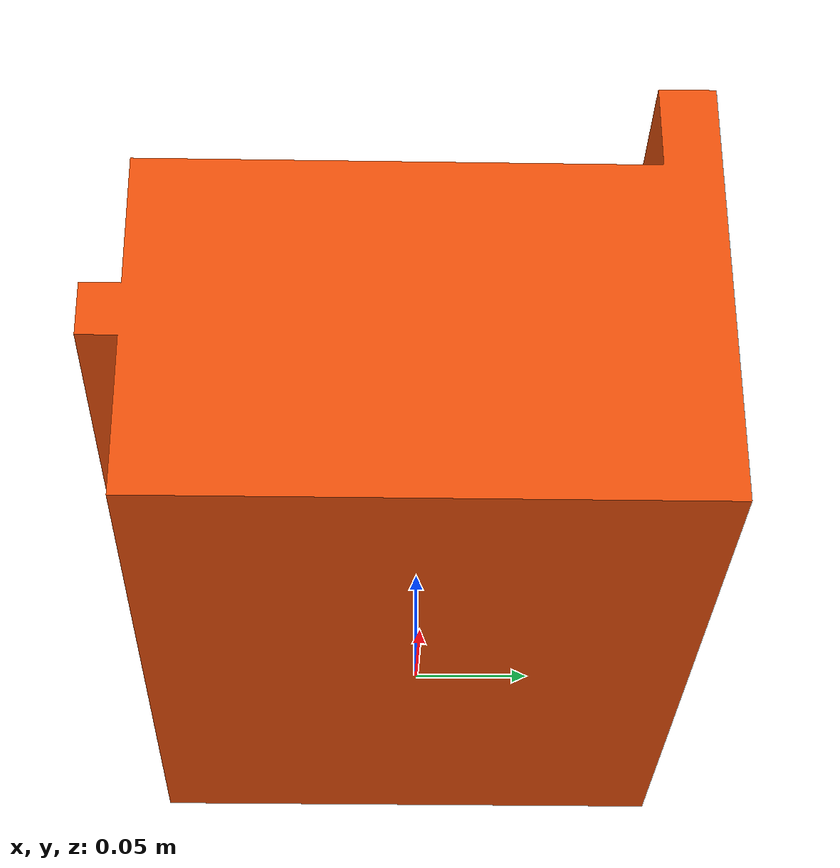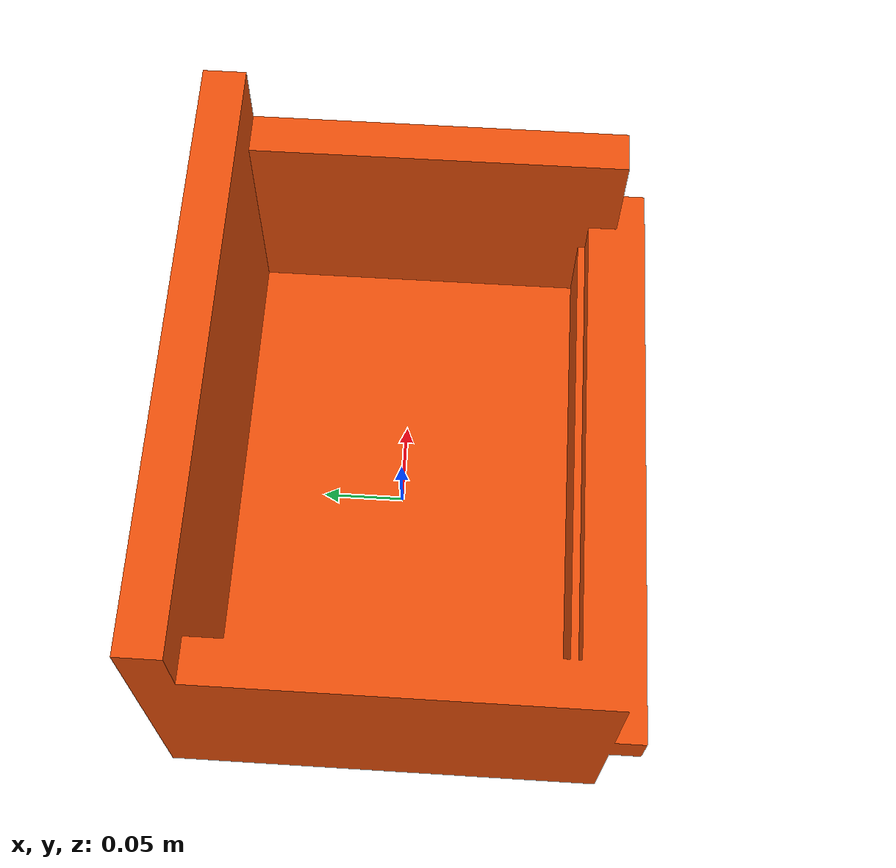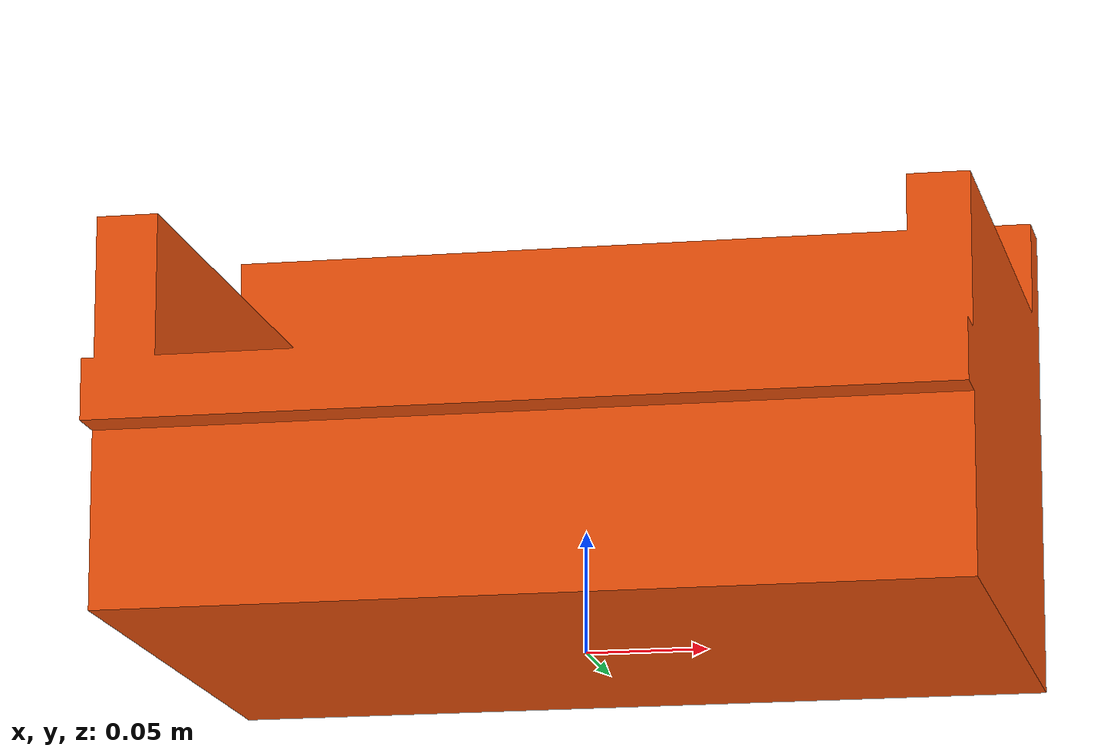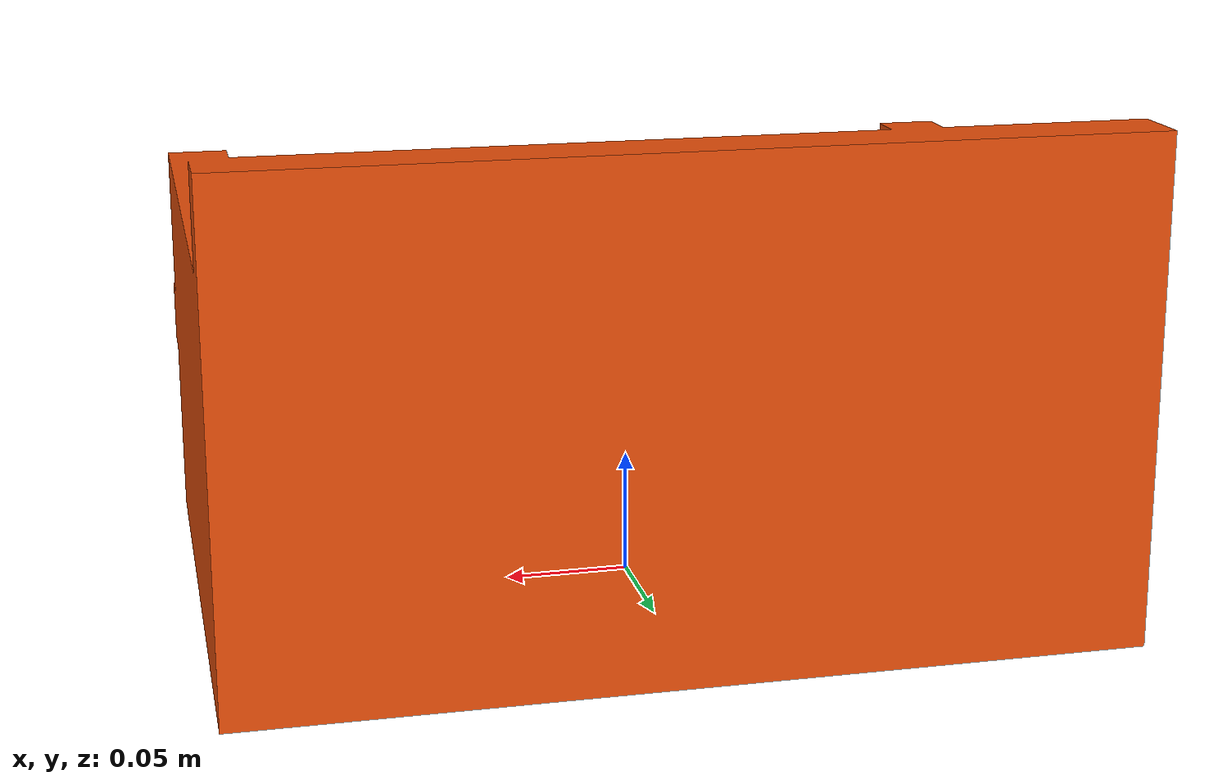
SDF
<?xml version="1.0"?><sdf version="1.6"><model name="parts_bin"><static>false</static><link name="link"><visual name="bin"><geometry><mesh><uri>model://parts_bin/meshes/parts_bin.stl</uri></mesh></geometry><material><ambient>0.92 0.31 0.04 1</ambient><diffuse>0.92 0.31 0.04 1</diffuse><specular>0.08 0.08 0.08 1</specular></material></visual><inertial><mass>0.45</mass><inertia><ixx>0.004549</ixx><iyy>0.006949</iyy><izz>0.007867</izz><ixy>0</ixy><ixz>0</ixz><iyz>0</iyz></inertia></inertial><collision name="bottom"><pose>0 0 0.0125 0 0 0</pose><geometry><box><size>0.35 0.25 0.025</size></box></geometry></collision><collision name="back"><pose>0 0.1125 0.10 0 0 0</pose><geometry><box><size>0.35 0.025 0.20</size></box></geometry></collision></link></model></sdf>
